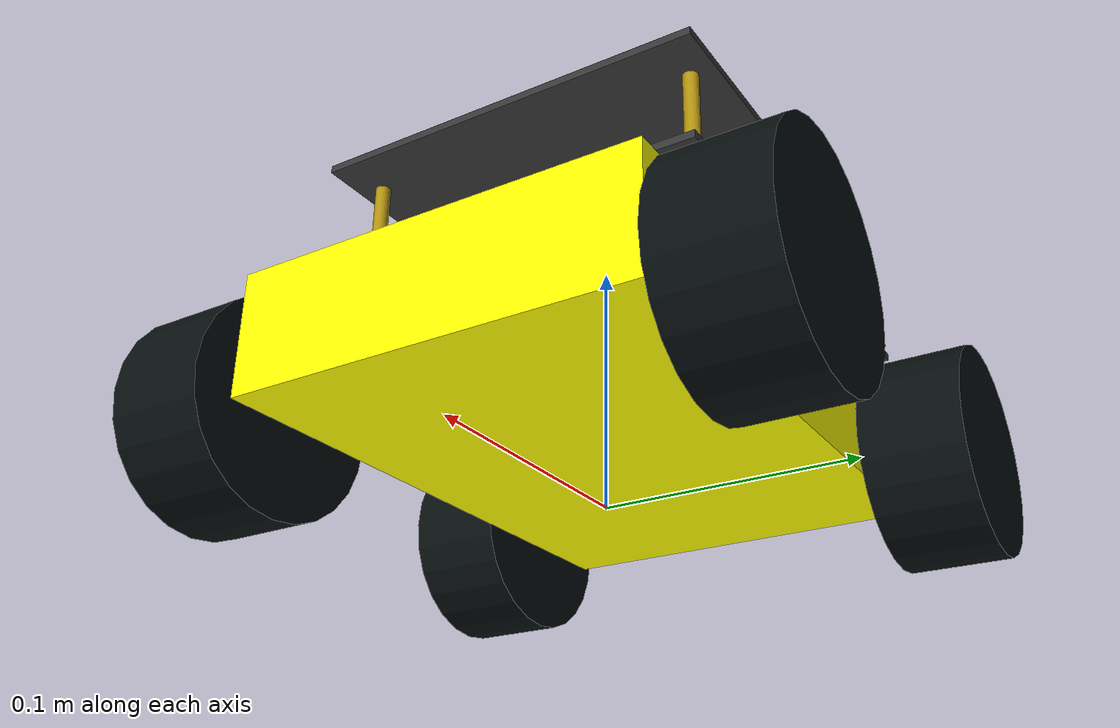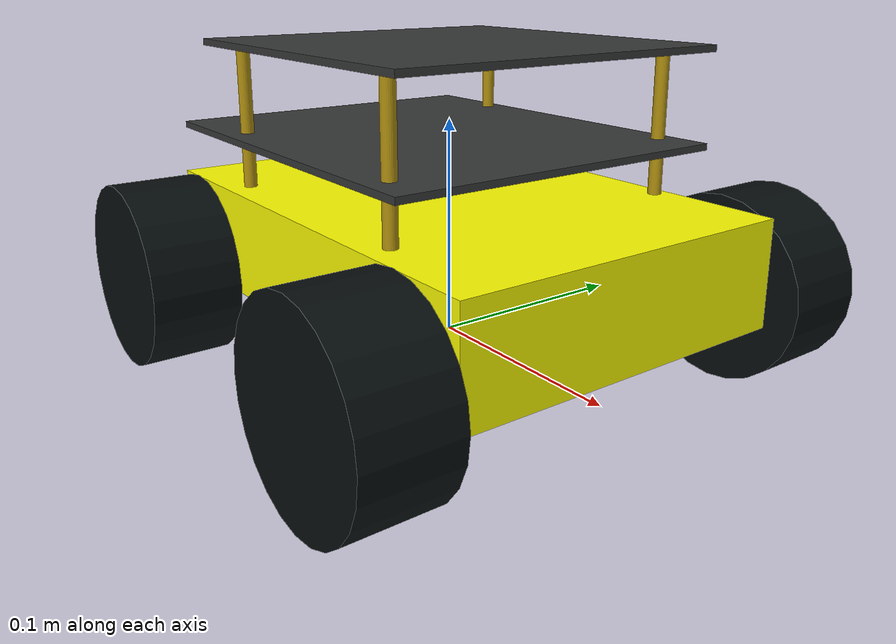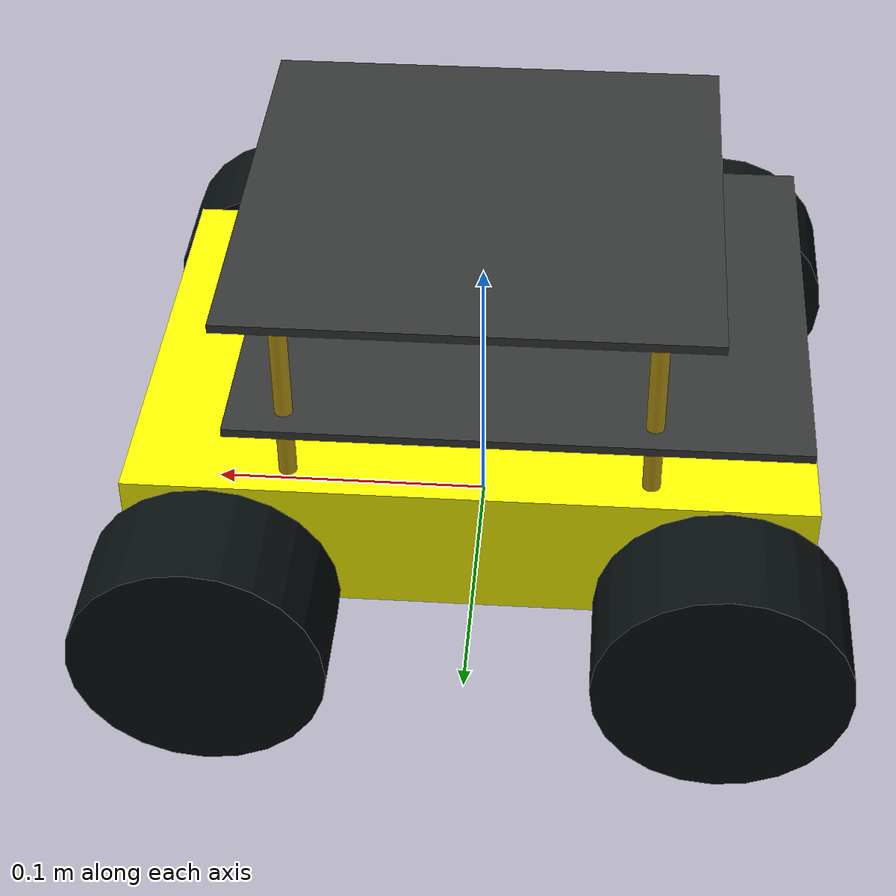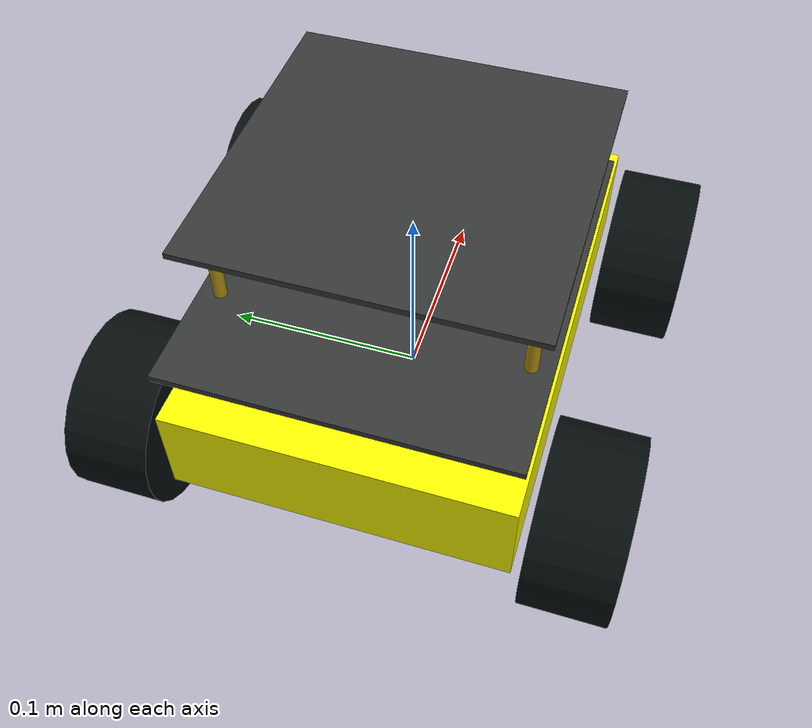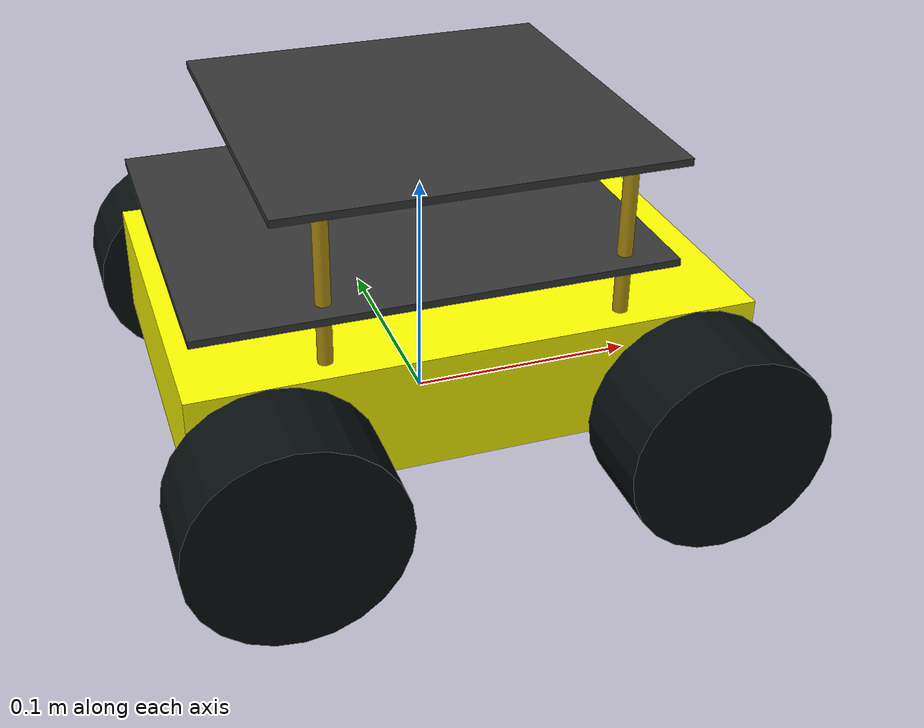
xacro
<?xml version="1.0"?>
<robot xmlns:xacro="http://www.ros.org/wiki/xacro">

    <xacro:include filename="inertial_macros.xacro"/>
    <xacro:include filename="wheels.xacro"/>
    <xacro:include filename="acrylic_base.xacro"/>
    <xacro:include filename="standoff.xacro"/>

    <link name="base_link"/>

    <!--base_footprint -->

    <joint name="base_footprint_joint" type="fixed">
        <parent link="base_footprint"/>
        <child link="base_link"/>
        <origin xyz="0 0 0" rpy="0 0 0"/>
    </joint>

    <link name="base_footprint">
    </link>

    <xacro:property name="base_mass"        value="1.0"/>
    <xacro:property name="base_length"      value="0.23"/>
    <xacro:property name="base_height"      value="0.048"/>
    <xacro:property name="base_width"       value="0.16"/>

    <xacro:property name="wheel_mass"       value="0.06"/>
    <xacro:property name="wheel_radius"     value="0.0425"/>
    <xacro:property name="wheel_thickness"  value="0.04"/>

    <xacro:property name="acrylic_thickness"  value="0.003"/>
    <xacro:property name="acrylic_width"  value="0.16"/>

    <!--Main chassis -->

    <link name="chassis">
        <visual name="">
            <origin xyz="0 0 0"/>
            <geometry>
                <box size="${base_length} ${base_width} ${base_height}"/>
            </geometry>
            <material name="">
                <color rgba="1.0 1.0 0.0 1.0"/>
            </material>
        </visual>

        <collision>
            <origin xyz="0 0 0"/>
            <geometry>
                <box size="${base_length} ${base_width} ${base_height}"/>
            </geometry>
        </collision>

        <xacro:inertial_box mass="${base_mass}" x="${base_length}" y="${base_width}" z="${base_height}">
            <origin xyz="0 0 0" rpy="0 0 0"/>
        </xacro:inertial_box>
    </link>

    <gazebo reference = "chassis">
        <material>Gazebo/Yellow</material>
    </gazebo>

    <joint name="chassis_joint" type="fixed">
        <parent link="base_link"/>
        <child link="chassis"/>
        <origin xyz="0.0 0.0 0.0425"/>
    </joint>

    <!-- Wheels -->

    <xacro:wheel name="front_left"  x="0.085" y =" 0.105" wheel_mass="${wheel_mass}" wheel_radius="${wheel_radius}" wheel_thickness="${wheel_thickness}"/>
    <xacro:wheel name="rear_left" x="-0.085" y =" 0.105" wheel_mass="${wheel_mass}" wheel_radius="${wheel_radius}" wheel_thickness="${wheel_thickness}"/>
    <xacro:wheel name="rear_right"  x="-0.085" y =" -0.105" wheel_mass="${wheel_mass}" wheel_radius="${wheel_radius}" wheel_thickness="${wheel_thickness}"/>
    <xacro:wheel name="front_right"   x="0.085" y =" -0.105" wheel_mass="${wheel_mass}" wheel_radius="${wheel_radius}" wheel_thickness="${wheel_thickness}"/>

    <!-- Acrylic base -->

    <xacro:acrylic_base parent="chassis" child="jetson_base" sheet_mass="0.02" sheet_length="0.190" sheet_width="${acrylic_width}" sheet_thickness="${acrylic_thickness}" xyz="-0.016 0 0.048"  />
    <xacro:acrylic_base parent="chassis" child="lidar_base" sheet_mass="0.01" sheet_length="0.160" sheet_width="${acrylic_width}" sheet_thickness="${acrylic_thickness}" xyz="0 0 0.090" />

    <!-- Standoffs -->

    <xacro:robot_pillar parent="chassis" child="chassis_pillar1" standoff_mass="0.002" standoff_length="0.022" standoff_radius="0.003" xyz="0.06  0.07 0.036" />
    <xacro:robot_pillar parent="chassis" child="chassis_pillar2" standoff_mass="0.002" standoff_length="0.022" standoff_radius="0.003" xyz="0.06  -0.07 0.036" />
    <xacro:robot_pillar parent="chassis" child="chassis_pillar3" standoff_mass="0.002" standoff_length="0.022" standoff_radius="0.003" xyz="-0.06 0.07 0.036" />
    <xacro:robot_pillar parent="chassis" child="chassis_pillar4" standoff_mass="0.002" standoff_length="0.022" standoff_radius="0.003" xyz="-0.06 -0.07 0.036" />

    <xacro:robot_pillar parent="chassis" child="jetson_base_pillar1" standoff_mass="0.003" standoff_length="0.04" standoff_radius="0.003" xyz="0.06  0.07  0.07" />
    <xacro:robot_pillar parent="chassis" child="jetson_base_pillar2" standoff_mass="0.003" standoff_length="0.04" standoff_radius="0.003" xyz="0.06  -0.07 0.07" />
    <xacro:robot_pillar parent="chassis" child="jetson_base_pillar3" standoff_mass="0.003" standoff_length="0.04" standoff_radius="0.003" xyz="-0.06 0.07  0.07" />
    <xacro:robot_pillar parent="chassis" child="jetson_base_pillar4" standoff_mass="0.003" standoff_length="0.04" standoff_radius="0.003" xyz="-0.06 -0.07 0.07" />

</robot>

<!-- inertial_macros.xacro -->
<robot xmlns:xacro="http://www.ros.org/wiki/xacro" >

    <!-- Specify some standard inertial calculations https://en.wikipedia.org/wiki/List_of_moments_of_inertia -->
    <!-- These make use of xacro's mathematical functionality -->

    <xacro:macro name="inertial_sphere" params="mass radius *origin">
        <inertial>
            <xacro:insert_block name="origin"/>
            <mass value="${mass}" />
            <inertia ixx="${(2/5) * mass * (radius*radius)}" ixy="0.0" ixz="0.0"
                    iyy="${(2/5) * mass * (radius*radius)}" iyz="0.0"
                    izz="${(2/5) * mass * (radius*radius)}" />
        </inertial>
    </xacro:macro>

    <xacro:macro name="inertial_box" params="mass x y z *origin">
        <inertial>
            <xacro:insert_block name="origin"/>
            <mass value="${mass}" />
            <inertia ixx="${(1/12) * mass * (y*y+z*z)}" ixy="0.0" ixz="0.0"
                    iyy="${(1/12) * mass * (x*x+z*z)}" iyz="0.0"
                    izz="${(1/12) * mass * (x*x+y*y)}" />
        </inertial>
    </xacro:macro>

    <xacro:macro name="inertial_cylinder" params="mass length radius *origin">
        <inertial>
            <xacro:insert_block name="origin"/>
            <mass value="${mass}" />
            <inertia ixx="${(1/12) * mass * (3*radius*radius + length*length)}" ixy="0.0" ixz="0.0"
                    iyy="${(1/12) * mass * (3*radius*radius + length*length)}" iyz="0.0"
                    izz="${(1/2) * mass * (radius*radius)}" />
        </inertial>
    </xacro:macro>

</robot>

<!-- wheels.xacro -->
<robot xmlns:xacro="http://www.ros.org/wiki/xacro"  name="robot">

    <xacro:include filename="inertial_macros.xacro"/>

    <xacro:macro name="wheel" params="name x y wheel_mass wheel_radius wheel_thickness">

        <link name="${name}_wheel_link">

            <visual name="">
                <origin xyz="0.0 0.0 0.0" rpy="0.0 0.0 0.0"/>
                <geometry>
                    <cylinder radius="${wheel_radius}" length="${wheel_thickness}"/>
                </geometry>
                <material name="almostblack" >
                    <color rgba="0.027450980392156862 0.050980392156862744 0.050980392156862744 1.0" />
                </material>
            </visual>

            <collision>
                    <origin xyz="0.0 0.0 0.0" rpy="0.0 0.0 0.0"/>
                    <geometry>
                        <sphere radius="${wheel_radius}"/>
                    </geometry>
            </collision>

            <xacro:inertial_cylinder mass="${wheel_mass}" length="${wheel_thickness}" radius="${wheel_radius}">
                <origin xyz="0 0 0" rpy="0 0 0"/>
            </xacro:inertial_cylinder>
        </link>

        <gazebo reference = "${name}_wheel_link">
            <material>Gazebo/Black</material>
        </gazebo>

        <joint name="${name}_wheel_joint" type="continuous">
            <parent link="chassis"/>
            <child link="${name}_wheel_link"/>
            <origin xyz="${x} ${y} -0.015" rpy="-1.57 0.0 0.0"/>
            <axis xyz=".0 .0 1.0"/>
        </joint>

    </xacro:macro>

</robot>

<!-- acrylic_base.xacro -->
<robot xmlns:xacro="http://www.ros.org/wiki/xacro"  name="robot">

    <xacro:include filename="inertial_macros.xacro"/>

    <xacro:macro name="acrylic_base" params="parent child sheet_mass sheet_length sheet_width sheet_thickness xyz">

        <link name="${child}">
            <visual>
                <geometry>
                    <box size="${sheet_length} ${sheet_width} ${sheet_thickness}"/>
                </geometry>
                <material name="darkgrey" >
                    <color rgba="0.21176470588235294 0.21568627450980393 0.21568627450980393 1.0" />
                </material>
            </visual>

            <collision>
                <geometry>
                    <box size="${sheet_length} ${sheet_width} ${sheet_thickness}"/>
                </geometry>
            </collision>

            <xacro:inertial_box mass="${sheet_mass}" x="${sheet_length}" y="${sheet_width}" z="${sheet_thickness}">
                <origin xyz="${sheet_length/2} 0 ${sheet_thickness/2}" rpy="0 0 0"/>
            </xacro:inertial_box>
        </link>

        <joint name="${parent}_to_${child}_joint" type="fixed">
            <origin xyz="${xyz}" rpy="0 0 0" />
            <parent link="${parent}" />
            <child link="${child}" />
        </joint>

        <gazebo reference = "${child}">
            <material>Gazebo/FlatBlack</material>
        </gazebo>

    </xacro:macro>

</robot>

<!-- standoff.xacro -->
<robot xmlns:xacro="http://wiki.ros.org/xacro">

    <xacro:macro name="robot_pillar" params="parent child standoff_mass standoff_length standoff_radius xyz">

        <link name="${child}">
            <visual>
                <geometry>
                    <cylinder radius="${standoff_radius}" length="${standoff_length}"/>
                </geometry>
                <material name="darkgold" >
                    <color rgba="0.7098039215686275 0.5803921568627451 0.06274509803921569 1.0" />
                </material>
            </visual>

            <collision>
                <geometry>
                    <cylinder radius="${standoff_radius}" length="${standoff_length}"/>
                </geometry>
            </collision>

            <xacro:inertial_cylinder mass="${standoff_mass}" length="${standoff_length}" radius="${standoff_radius}">
                <origin xyz="0 0 0" rpy="0 0 0"/>
            </xacro:inertial_cylinder>
        </link>

        <joint name="${parent}_to_${child}_joint" type="fixed">
            <origin xyz="${xyz}" rpy="0 0 0"/>
            <parent link="${parent}"/>
            <child link="${child}"/>
        </joint>

        <gazebo reference = "${child}">
            <material>Gazebo/Gold</material>
        </gazebo>

    </xacro:macro>
</robot>
